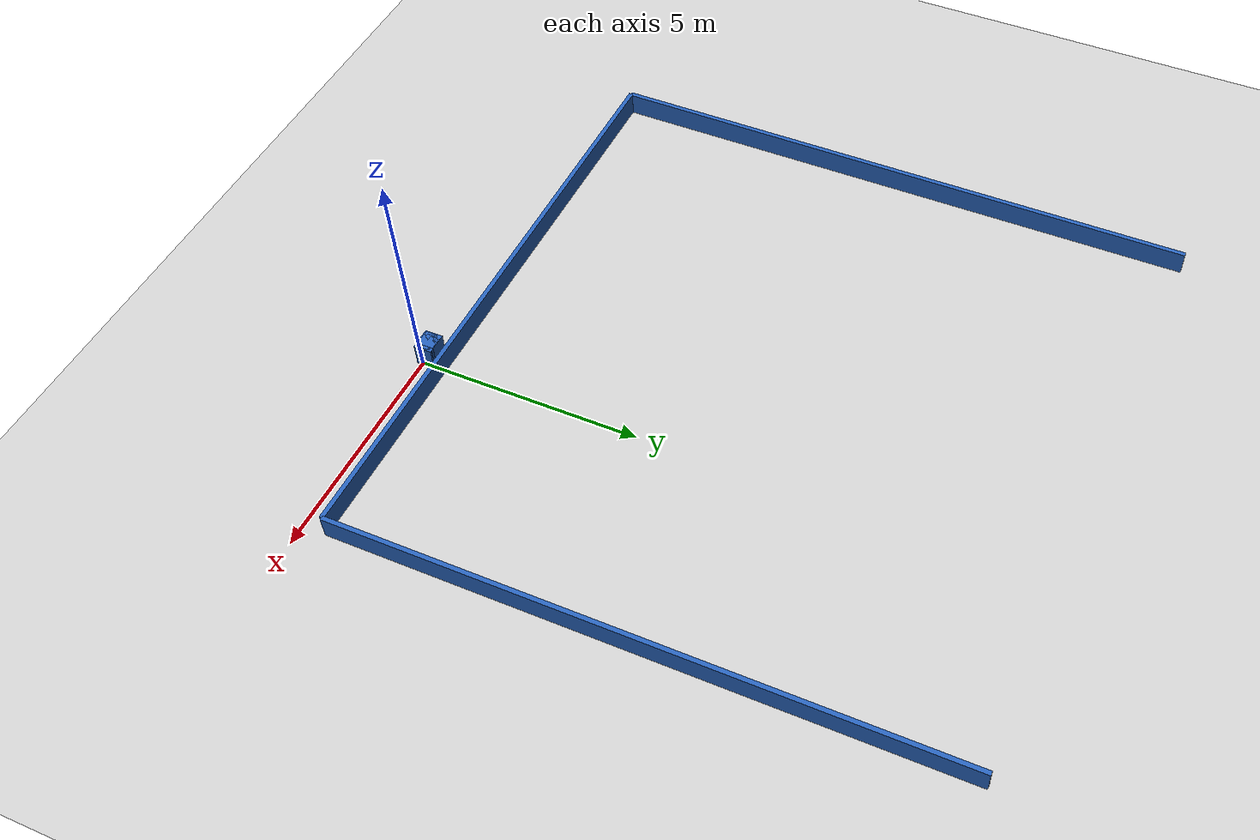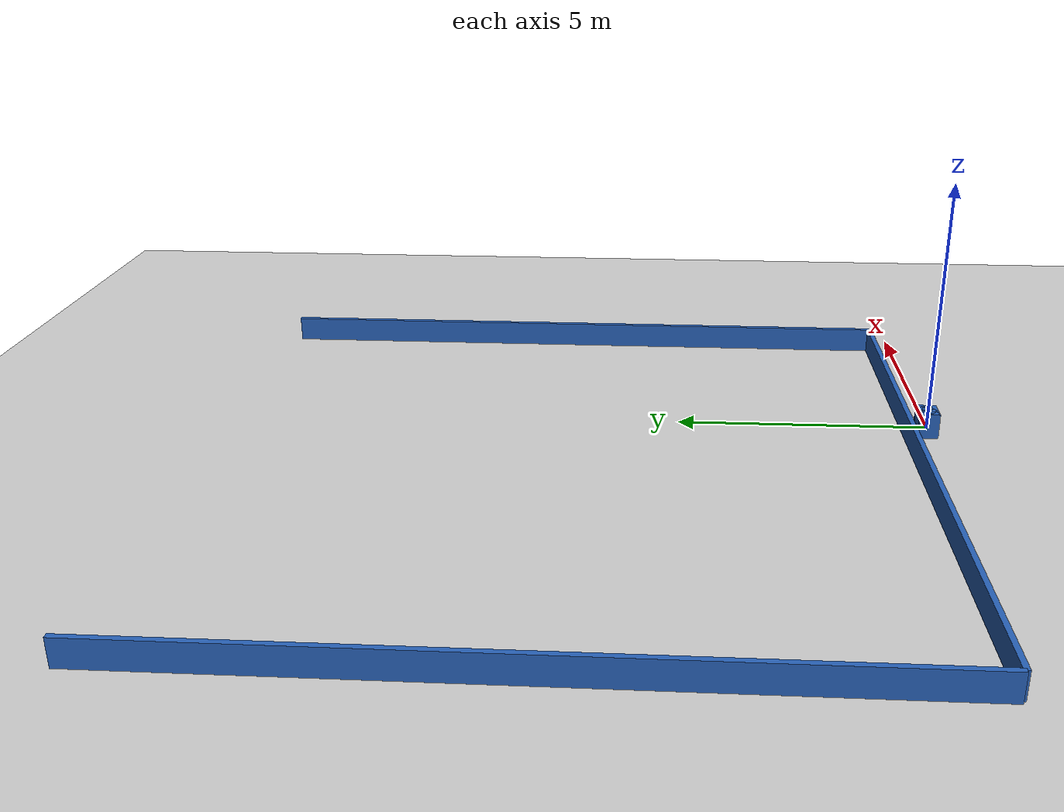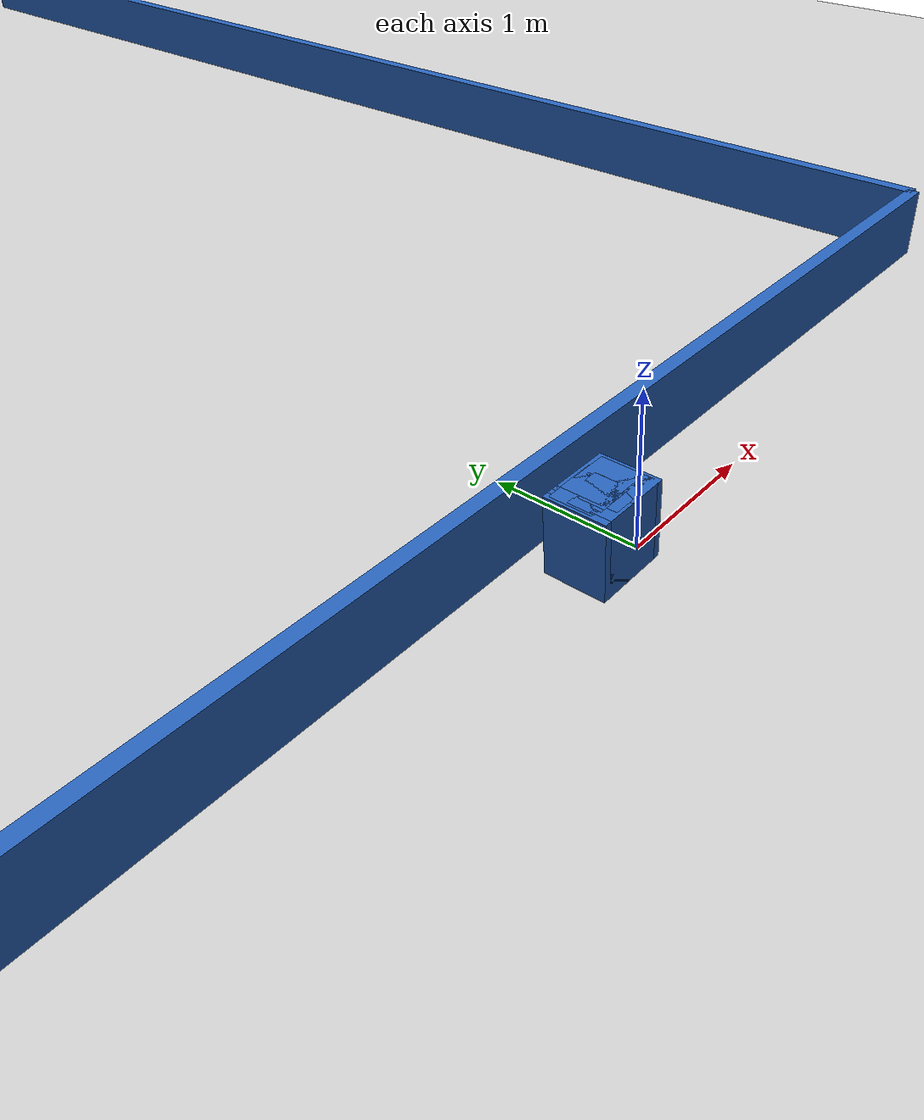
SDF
<?xml version="1.0" ?>
    <sdf version="1.5">
      <world name="default">
        <!-- A global light source -->
        <include>
          <uri>model://sun</uri>
        </include>
        <!-- A ground plane -->
        <include>
          <uri>model://ground_plane</uri>
        </include>

    <model name='libopen_space_final_T2B_90_76'>
      <static>1</static>
      <pose frame=''>-0.225000 0.075000 0.000000 0.000000 0.000000 0.000000</pose>
      <link name='link'>
        <inertial>
          <mass>1</mass>
          <inertia>
            <ixx>0.145833</ixx>
            <ixy>0</ixy>
            <ixz>0</ixz>
            <iyy>0.145833</iyy>
            <iyz>0</iyz>
            <izz>0.125</izz>
          </inertia>
        </inertial>
        <collision name='collision'>
          <geometry>
            <box>
              <size>0.17 0.23 1</size>
            </box>
          </geometry>
          <max_contacts>10</max_contacts>
          <surface>
            <contact>
              <ode/>
            </contact>
            <bounce/>
            <friction>
              <torsional>
                <ode/>
              </torsional>
              <ode/>
            </friction>
          </surface>
        </collision>
        <visual name='visual'>
          <geometry>
            <box>
              <size>0.17 0.23 1</size>
            </box>
          </geometry>
	    <material>
              <ambient>0.152000 0.379000 0.720000 1</ambient>
	      <diffuse>0.152000 0.379000 0.720000 1</diffuse>
          </material>
          <material>
            <script>
              <name>Gazebo/Grey</name>
              <uri>file://media/materials/scripts/gazebo.material</uri>
            </script>
          </material>
        </visual>
        <self_collide>0</self_collide>
        <kinematic>0</kinematic>
        <gravity>1</gravity>
      </link>
      <plugin name='libopen_space_final_T2B_90_76' filename='libopen_space_final_T2B_90_76.so'/>
    </model>

    <model name='libopen_space_final_T2B_115_16'>
      <static>1</static>
      <pose frame=''>-0.225000 0.075000 0.000000 0.000000 0.000000 0.000000</pose>
      <link name='link'>
        <inertial>
          <mass>1</mass>
          <inertia>
            <ixx>0.145833</ixx>
            <ixy>0</ixy>
            <ixz>0</ixz>
            <iyy>0.145833</iyy>
            <iyz>0</iyz>
            <izz>0.125</izz>
          </inertia>
        </inertial>
        <collision name='collision'>
          <geometry>
            <box>
              <size>0.36 0.11 1</size>
            </box>
          </geometry>
          <max_contacts>10</max_contacts>
          <surface>
            <contact>
              <ode/>
            </contact>
            <bounce/>
            <friction>
              <torsional>
                <ode/>
              </torsional>
              <ode/>
            </friction>
          </surface>
        </collision>
        <visual name='visual'>
          <geometry>
            <box>
              <size>0.36 0.11 1</size>
            </box>
          </geometry>
	    <material>
              <ambient>0.152000 0.379000 0.720000 1</ambient>
	      <diffuse>0.152000 0.379000 0.720000 1</diffuse>
          </material>
          <material>
            <script>
              <name>Gazebo/Grey</name>
              <uri>file://media/materials/scripts/gazebo.material</uri>
            </script>
          </material>
        </visual>
        <self_collide>0</self_collide>
        <kinematic>0</kinematic>
        <gravity>1</gravity>
      </link>
      <plugin name='libopen_space_final_T2B_115_16' filename='libopen_space_final_T2B_115_16.so'/>
    </model>

    <model name='libopen_space_final_T2B_111_18'>
      <static>1</static>
      <pose frame=''>-0.225000 0.075000 0.000000 0.000000 0.000000 0.000000</pose>
      <link name='link'>
        <inertial>
          <mass>1</mass>
          <inertia>
            <ixx>0.145833</ixx>
            <ixy>0</ixy>
            <ixz>0</ixz>
            <iyy>0.145833</iyy>
            <iyz>0</iyz>
            <izz>0.125</izz>
          </inertia>
        </inertial>
        <collision name='collision'>
          <geometry>
            <box>
              <size>0.42 0.14 1</size>
            </box>
          </geometry>
          <max_contacts>10</max_contacts>
          <surface>
            <contact>
              <ode/>
            </contact>
            <bounce/>
            <friction>
              <torsional>
                <ode/>
              </torsional>
              <ode/>
            </friction>
          </surface>
        </collision>
        <visual name='visual'>
          <geometry>
            <box>
              <size>0.42 0.14 1</size>
            </box>
          </geometry>
	    <material>
              <ambient>0.152000 0.379000 0.720000 1</ambient>
	      <diffuse>0.152000 0.379000 0.720000 1</diffuse>
          </material>
          <material>
            <script>
              <name>Gazebo/Grey</name>
              <uri>file://media/materials/scripts/gazebo.material</uri>
            </script>
          </material>
        </visual>
        <self_collide>0</self_collide>
        <kinematic>0</kinematic>
        <gravity>1</gravity>
      </link>
      <plugin name='libopen_space_final_T2B_111_18' filename='libopen_space_final_T2B_111_18.so'/>
    </model>

    <model name='libopen_space_final_T2B_119_97'>
      <static>1</static>
      <pose frame=''>-0.225000 0.075000 0.000000 0.000000 0.000000 0.000000</pose>
      <link name='link'>
        <inertial>
          <mass>1</mass>
          <inertia>
            <ixx>0.145833</ixx>
            <ixy>0</ixy>
            <ixz>0</ixz>
            <iyy>0.145833</iyy>
            <iyz>0</iyz>
            <izz>0.125</izz>
          </inertia>
        </inertial>
        <collision name='collision'>
          <geometry>
            <box>
              <size>0.25 0.36 1</size>
            </box>
          </geometry>
          <max_contacts>10</max_contacts>
          <surface>
            <contact>
              <ode/>
            </contact>
            <bounce/>
            <friction>
              <torsional>
                <ode/>
              </torsional>
              <ode/>
            </friction>
          </surface>
        </collision>
        <visual name='visual'>
          <geometry>
            <box>
              <size>0.25 0.36 1</size>
            </box>
          </geometry>
	    <material>
              <ambient>0.152000 0.379000 0.720000 1</ambient>
	      <diffuse>0.152000 0.379000 0.720000 1</diffuse>
          </material>
          <material>
            <script>
              <name>Gazebo/Grey</name>
              <uri>file://media/materials/scripts/gazebo.material</uri>
            </script>
          </material>
        </visual>
        <self_collide>0</self_collide>
        <kinematic>0</kinematic>
        <gravity>1</gravity>
      </link>
      <plugin name='libopen_space_final_T2B_119_97' filename='libopen_space_final_T2B_119_97.so'/>
    </model>

    <model name='libopen_space_final_T2B_126_41'>
      <static>1</static>
      <pose frame=''>-0.225000 0.075000 0.000000 0.000000 0.000000 0.000000</pose>
      <link name='link'>
        <inertial>
          <mass>1</mass>
          <inertia>
            <ixx>0.145833</ixx>
            <ixy>0</ixy>
            <ixz>0</ixz>
            <iyy>0.145833</iyy>
            <iyz>0</iyz>
            <izz>0.125</izz>
          </inertia>
        </inertial>
        <collision name='collision'>
          <geometry>
            <box>
              <size>0.13 0.29 1</size>
            </box>
          </geometry>
          <max_contacts>10</max_contacts>
          <surface>
            <contact>
              <ode/>
            </contact>
            <bounce/>
            <friction>
              <torsional>
                <ode/>
              </torsional>
              <ode/>
            </friction>
          </surface>
        </collision>
        <visual name='visual'>
          <geometry>
            <box>
              <size>0.13 0.29 1</size>
            </box>
          </geometry>
	    <material>
              <ambient>0.152000 0.379000 0.720000 1</ambient>
	      <diffuse>0.152000 0.379000 0.720000 1</diffuse>
          </material>
          <material>
            <script>
              <name>Gazebo/Grey</name>
              <uri>file://media/materials/scripts/gazebo.material</uri>
            </script>
          </material>
        </visual>
        <self_collide>0</self_collide>
        <kinematic>0</kinematic>
        <gravity>1</gravity>
      </link>
      <plugin name='libopen_space_final_T2B_126_41' filename='libopen_space_final_T2B_126_41.so'/>
    </model>

    <model name='libopen_space_final_T2B_134_32'>
      <static>1</static>
      <pose frame=''>-0.225000 0.075000 0.000000 0.000000 0.000000 0.000000</pose>
      <link name='link'>
        <inertial>
          <mass>1</mass>
          <inertia>
            <ixx>0.145833</ixx>
            <ixy>0</ixy>
            <ixz>0</ixz>
            <iyy>0.145833</iyy>
            <iyz>0</iyz>
            <izz>0.125</izz>
          </inertia>
        </inertial>
        <collision name='collision'>
          <geometry>
            <box>
              <size>0.29 0.23 1</size>
            </box>
          </geometry>
          <max_contacts>10</max_contacts>
          <surface>
            <contact>
              <ode/>
            </contact>
            <bounce/>
            <friction>
              <torsional>
                <ode/>
              </torsional>
              <ode/>
            </friction>
          </surface>
        </collision>
        <visual name='visual'>
          <geometry>
            <box>
              <size>0.29 0.23 1</size>
            </box>
          </geometry>
	    <material>
              <ambient>0.152000 0.379000 0.720000 1</ambient>
	      <diffuse>0.152000 0.379000 0.720000 1</diffuse>
          </material>
          <material>
            <script>
              <name>Gazebo/Grey</name>
              <uri>file://media/materials/scripts/gazebo.material</uri>
            </script>
          </material>
        </visual>
        <self_collide>0</self_collide>
        <kinematic>0</kinematic>
        <gravity>1</gravity>
      </link>
      <plugin name='libopen_space_final_T2B_134_32' filename='libopen_space_final_T2B_134_32.so'/>
    </model>

    <model name='libopen_space_final_T2B_112_81'>
      <static>1</static>
      <pose frame=''>-0.225000 0.075000 0.000000 0.000000 0.000000 0.000000</pose>
      <link name='link'>
        <inertial>
          <mass>1</mass>
          <inertia>
            <ixx>0.145833</ixx>
            <ixy>0</ixy>
            <ixz>0</ixz>
            <iyy>0.145833</iyy>
            <iyz>0</iyz>
            <izz>0.125</izz>
          </inertia>
        </inertial>
        <collision name='collision'>
          <geometry>
            <box>
              <size>0.42 0.20 1</size>
            </box>
          </geometry>
          <max_contacts>10</max_contacts>
          <surface>
            <contact>
              <ode/>
            </contact>
            <bounce/>
            <friction>
              <torsional>
                <ode/>
              </torsional>
              <ode/>
            </friction>
          </surface>
        </collision>
        <visual name='visual'>
          <geometry>
            <box>
              <size>0.42 0.20 1</size>
            </box>
          </geometry>
	    <material>
              <ambient>0.152000 0.379000 0.720000 1</ambient>
	      <diffuse>0.152000 0.379000 0.720000 1</diffuse>
          </material>
          <material>
            <script>
              <name>Gazebo/Grey</name>
              <uri>file://media/materials/scripts/gazebo.material</uri>
            </script>
          </material>
        </visual>
        <self_collide>0</self_collide>
        <kinematic>0</kinematic>
        <gravity>1</gravity>
      </link>
      <plugin name='libopen_space_final_T2B_112_81' filename='libopen_space_final_T2B_112_81.so'/>
    </model>

    <model name='libopen_space_final_T2B_148_40'>
      <static>1</static>
      <pose frame=''>-0.225000 0.075000 0.000000 0.000000 0.000000 0.000000</pose>
      <link name='link'>
        <inertial>
          <mass>1</mass>
          <inertia>
            <ixx>0.145833</ixx>
            <ixy>0</ixy>
            <ixz>0</ixz>
            <iyy>0.145833</iyy>
            <iyz>0</iyz>
            <izz>0.125</izz>
          </inertia>
        </inertial>
        <collision name='collision'>
          <geometry>
            <box>
              <size>0.45 0.35 1</size>
            </box>
          </geometry>
          <max_contacts>10</max_contacts>
          <surface>
            <contact>
              <ode/>
            </contact>
            <bounce/>
            <friction>
              <torsional>
                <ode/>
              </torsional>
              <ode/>
            </friction>
          </surface>
        </collision>
        <visual name='visual'>
          <geometry>
            <box>
              <size>0.45 0.35 1</size>
            </box>
          </geometry>
	    <material>
              <ambient>0.152000 0.379000 0.720000 1</ambient>
	      <diffuse>0.152000 0.379000 0.720000 1</diffuse>
          </material>
          <material>
            <script>
              <name>Gazebo/Grey</name>
              <uri>file://media/materials/scripts/gazebo.material</uri>
            </script>
          </material>
        </visual>
        <self_collide>0</self_collide>
        <kinematic>0</kinematic>
        <gravity>1</gravity>
      </link>
      <plugin name='libopen_space_final_T2B_148_40' filename='libopen_space_final_T2B_148_40.so'/>
    </model>

    <model name='libopen_space_final_T2B_61_88'>
      <static>1</static>
      <pose frame=''>-0.225000 0.075000 0.000000 0.000000 0.000000 0.000000</pose>
      <link name='link'>
        <inertial>
          <mass>1</mass>
          <inertia>
            <ixx>0.145833</ixx>
            <ixy>0</ixy>
            <ixz>0</ixz>
            <iyy>0.145833</iyy>
            <iyz>0</iyz>
            <izz>0.125</izz>
          </inertia>
        </inertial>
        <collision name='collision'>
          <geometry>
            <box>
              <size>0.27 0.36 1</size>
            </box>
          </geometry>
          <max_contacts>10</max_contacts>
          <surface>
            <contact>
              <ode/>
            </contact>
            <bounce/>
            <friction>
              <torsional>
                <ode/>
              </torsional>
              <ode/>
            </friction>
          </surface>
        </collision>
        <visual name='visual'>
          <geometry>
            <box>
              <size>0.27 0.36 1</size>
            </box>
          </geometry>
	    <material>
              <ambient>0.152000 0.379000 0.720000 1</ambient>
	      <diffuse>0.152000 0.379000 0.720000 1</diffuse>
          </material>
          <material>
            <script>
              <name>Gazebo/Grey</name>
              <uri>file://media/materials/scripts/gazebo.material</uri>
            </script>
          </material>
        </visual>
        <self_collide>0</self_collide>
        <kinematic>0</kinematic>
        <gravity>1</gravity>
      </link>
      <plugin name='libopen_space_final_T2B_61_88' filename='libopen_space_final_T2B_61_88.so'/>
    </model>

    <model name='libopen_space_final_T2B_73_55'>
      <static>1</static>
      <pose frame=''>-0.225000 0.075000 0.000000 0.000000 0.000000 0.000000</pose>
      <link name='link'>
        <inertial>
          <mass>1</mass>
          <inertia>
            <ixx>0.145833</ixx>
            <ixy>0</ixy>
            <ixz>0</ixz>
            <iyy>0.145833</iyy>
            <iyz>0</iyz>
            <izz>0.125</izz>
          </inertia>
        </inertial>
        <collision name='collision'>
          <geometry>
            <box>
              <size>0.36 0.20 1</size>
            </box>
          </geometry>
          <max_contacts>10</max_contacts>
          <surface>
            <contact>
              <ode/>
            </contact>
            <bounce/>
            <friction>
              <torsional>
                <ode/>
              </torsional>
              <ode/>
            </friction>
          </surface>
        </collision>
        <visual name='visual'>
          <geometry>
            <box>
              <size>0.36 0.20 1</size>
            </box>
          </geometry>
	    <material>
              <ambient>0.152000 0.379000 0.720000 1</ambient>
	      <diffuse>0.152000 0.379000 0.720000 1</diffuse>
          </material>
          <material>
            <script>
              <name>Gazebo/Grey</name>
              <uri>file://media/materials/scripts/gazebo.material</uri>
            </script>
          </material>
        </visual>
        <self_collide>0</self_collide>
        <kinematic>0</kinematic>
        <gravity>1</gravity>
      </link>
      <plugin name='libopen_space_final_T2B_73_55' filename='libopen_space_final_T2B_73_55.so'/>
    </model>

    <model name='libopen_space_final_T2B_90_95'>
      <static>1</static>
      <pose frame=''>-0.225000 0.075000 0.000000 0.000000 0.000000 0.000000</pose>
      <link name='link'>
        <inertial>
          <mass>1</mass>
          <inertia>
            <ixx>0.145833</ixx>
            <ixy>0</ixy>
            <ixz>0</ixz>
            <iyy>0.145833</iyy>
            <iyz>0</iyz>
            <izz>0.125</izz>
          </inertia>
        </inertial>
        <collision name='collision'>
          <geometry>
            <box>
              <size>0.49 0.40 1</size>
            </box>
          </geometry>
          <max_contacts>10</max_contacts>
          <surface>
            <contact>
              <ode/>
            </contact>
            <bounce/>
            <friction>
              <torsional>
                <ode/>
              </torsional>
              <ode/>
            </friction>
          </surface>
        </collision>
        <visual name='visual'>
          <geometry>
            <box>
              <size>0.49 0.40 1</size>
            </box>
          </geometry>
	    <material>
              <ambient>0.152000 0.379000 0.720000 1</ambient>
	      <diffuse>0.152000 0.379000 0.720000 1</diffuse>
          </material>
          <material>
            <script>
              <name>Gazebo/Grey</name>
              <uri>file://media/materials/scripts/gazebo.material</uri>
            </script>
          </material>
        </visual>
        <self_collide>0</self_collide>
        <kinematic>0</kinematic>
        <gravity>1</gravity>
      </link>
      <plugin name='libopen_space_final_T2B_90_95' filename='libopen_space_final_T2B_90_95.so'/>
    </model>

    <model name='libopen_space_final_T2B_105_94'>
      <static>1</static>
      <pose frame=''>-0.225000 0.075000 0.000000 0.000000 0.000000 0.000000</pose>
      <link name='link'>
        <inertial>
          <mass>1</mass>
          <inertia>
            <ixx>0.145833</ixx>
            <ixy>0</ixy>
            <ixz>0</ixz>
            <iyy>0.145833</iyy>
            <iyz>0</iyz>
            <izz>0.125</izz>
          </inertia>
        </inertial>
        <collision name='collision'>
          <geometry>
            <box>
              <size>0.40 0.40 1</size>
            </box>
          </geometry>
          <max_contacts>10</max_contacts>
          <surface>
            <contact>
              <ode/>
            </contact>
            <bounce/>
            <friction>
              <torsional>
                <ode/>
              </torsional>
              <ode/>
            </friction>
          </surface>
        </collision>
        <visual name='visual'>
          <geometry>
            <box>
              <size>0.40 0.40 1</size>
            </box>
          </geometry>
	    <material>
              <ambient>0.152000 0.379000 0.720000 1</ambient>
	      <diffuse>0.152000 0.379000 0.720000 1</diffuse>
          </material>
          <material>
            <script>
              <name>Gazebo/Grey</name>
              <uri>file://media/materials/scripts/gazebo.material</uri>
            </script>
          </material>
        </visual>
        <self_collide>0</self_collide>
        <kinematic>0</kinematic>
        <gravity>1</gravity>
      </link>
      <plugin name='libopen_space_final_T2B_105_94' filename='libopen_space_final_T2B_105_94.so'/>
    </model>

    <model name='libopen_space_final_T2B_111_12'>
      <static>1</static>
      <pose frame=''>-0.225000 0.075000 0.000000 0.000000 0.000000 0.000000</pose>
      <link name='link'>
        <inertial>
          <mass>1</mass>
          <inertia>
            <ixx>0.145833</ixx>
            <ixy>0</ixy>
            <ixz>0</ixz>
            <iyy>0.145833</iyy>
            <iyz>0</iyz>
            <izz>0.125</izz>
          </inertia>
        </inertial>
        <collision name='collision'>
          <geometry>
            <box>
              <size>0.34 0.23 1</size>
            </box>
          </geometry>
          <max_contacts>10</max_contacts>
          <surface>
            <contact>
              <ode/>
            </contact>
            <bounce/>
            <friction>
              <torsional>
                <ode/>
              </torsional>
              <ode/>
            </friction>
          </surface>
        </collision>
        <visual name='visual'>
          <geometry>
            <box>
              <size>0.34 0.23 1</size>
            </box>
          </geometry>
	    <material>
              <ambient>0.152000 0.379000 0.720000 1</ambient>
	      <diffuse>0.152000 0.379000 0.720000 1</diffuse>
          </material>
          <material>
            <script>
              <name>Gazebo/Grey</name>
              <uri>file://media/materials/scripts/gazebo.material</uri>
            </script>
          </material>
        </visual>
        <self_collide>0</self_collide>
        <kinematic>0</kinematic>
        <gravity>1</gravity>
      </link>
      <plugin name='libopen_space_final_T2B_111_12' filename='libopen_space_final_T2B_111_12.so'/>
    </model>

        <model name='bottom_wall'>
          <static>1</static>
          <pose frame=''>-2.25 0.5 0.000000 0.000000 0.000000 1.57079632</pose>
          <link name='link'>
            <inertial>
            <mass>1</mass>
            <inertia>
              <ixx>0.145833</ixx>
              <ixy>0</ixy>
              <ixz>0</ixz>
              <iyy>0.145833</iyy>
              <iyz>0</iyz>
              <izz>0.125</izz>
            </inertia>
            </inertial>
            <collision name='collision'>
            <geometry>
              <box>
              <size>0.1 13.5 1</size>
              </box>
            </geometry>
            <max_contacts>10</max_contacts>
            <surface>
              <contact>
              <ode/>
              </contact>
              <bounce/>
              <friction>
              <torsional>
                <ode/>
              </torsional>
              <ode/>
              </friction>
            </surface>
            </collision>
            <visual name='visual'>
            <geometry>
              <box>
              <size>0.1 13.5 1</size>
              </box>
            </geometry>
            <material>
              <ambient>0.152000 0.379000 0.720000 1</ambient>
            <diffuse>0.152000 0.379000 0.720000 1</diffuse>
            </material>
            <material>
              <script>
              <name>Gazebo/Grey</name>
              <uri>file://media/materials/scripts/gazebo.material</uri>
              </script>
            </material>
            </visual>
            <self_collide>0</self_collide>
            <kinematic>0</kinematic>
            <gravity>1</gravity>
          </link>
        </model>

        <model name='left_wall'>
          <static>1</static>
          <pose frame=''>-9 7.25 0.000000 0.000000 0.000000 0.000000</pose>
          <link name='link'>
            <inertial>
            <mass>1</mass>
            <inertia>
              <ixx>0.145833</ixx>
              <ixy>0</ixy>
              <ixz>0</ixz>
              <iyy>0.145833</iyy>
              <iyz>0</iyz>
              <izz>0.125</izz>
            </inertia>
            </inertial>
            <collision name='collision'>
            <geometry>
              <box>
              <size>0.1 13.5 1</size>
              </box>
            </geometry>
            <max_contacts>10</max_contacts>
            <surface>
              <contact>
              <ode/>
              </contact>
              <bounce/>
              <friction>
              <torsional>
                <ode/>
              </torsional>
              <ode/>
              </friction>
            </surface>
            </collision>
            <visual name='visual'>
            <geometry>
              <box>
              <size>0.1 13.5 1</size>
              </box>
            </geometry>
            <material>
              <ambient>0.152000 0.379000 0.720000 1</ambient>
            <diffuse>0.152000 0.379000 0.720000 1</diffuse>
            </material>
            <material>
              <script>
              <name>Gazebo/Grey</name>
              <uri>file://media/materials/scripts/gazebo.material</uri>
              </script>
            </material>
            </visual>
            <self_collide>0</self_collide>
            <kinematic>0</kinematic>
            <gravity>1</gravity>
          </link>
        </model>

        <model name='right_wall'>
          <static>1</static>
          <pose frame=''>4.5 7.25 0.000000 0.000000 0.000000 0.000000</pose>
          <link name='link'>
            <inertial>
            <mass>1</mass>
            <inertia>
              <ixx>0.145833</ixx>
              <ixy>0</ixy>
              <ixz>0</ixz>
              <iyy>0.145833</iyy>
              <iyz>0</iyz>
              <izz>0.125</izz>
            </inertia>
            </inertial>
            <collision name='collision'>
            <geometry>
              <box>
              <size>0.1 13.5 1</size>
              </box>
            </geometry>
            <max_contacts>10</max_contacts>
            <surface>
              <contact>
              <ode/>
              </contact>
              <bounce/>
              <friction>
              <torsional>
                <ode/>
              </torsional>
              <ode/>
              </friction>
            </surface>
            </collision>
            <visual name='visual'>
            <geometry>
              <box>
              <size>0.1 13.5 1</size>
              </box>
            </geometry>
            <material>
              <ambient>0.152000 0.379000 0.720000 1</ambient>
            <diffuse>0.152000 0.379000 0.720000 1</diffuse>
            </material>
            <material>
              <script>
              <name>Gazebo/Grey</name>
              <uri>file://media/materials/scripts/gazebo.material</uri>
              </script>
            </material>
            </visual>
            <self_collide>0</self_collide>
            <kinematic>0</kinematic>
            <gravity>1</gravity>
          </link>
        </model>

      </world>
    </sdf>"
